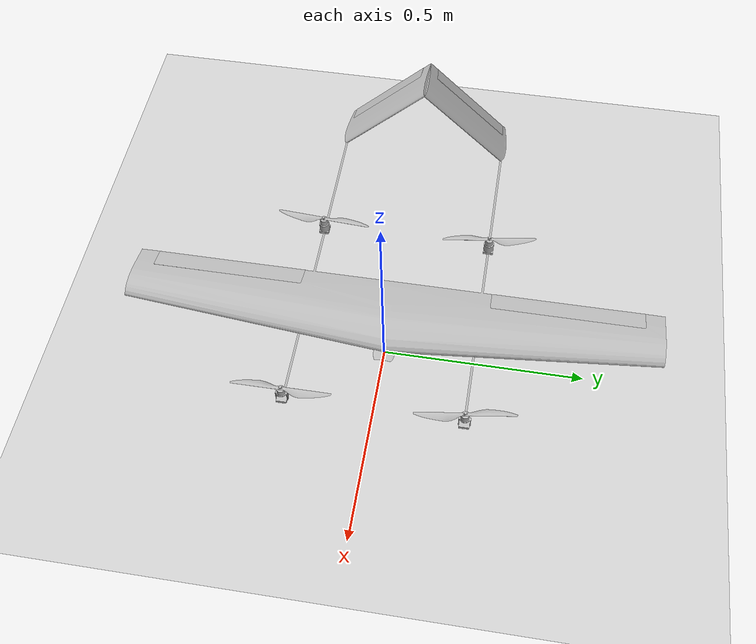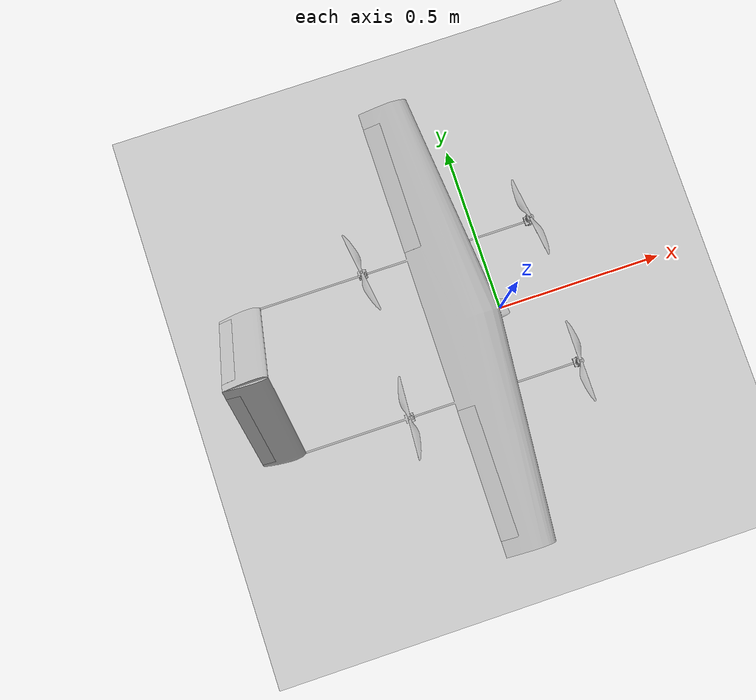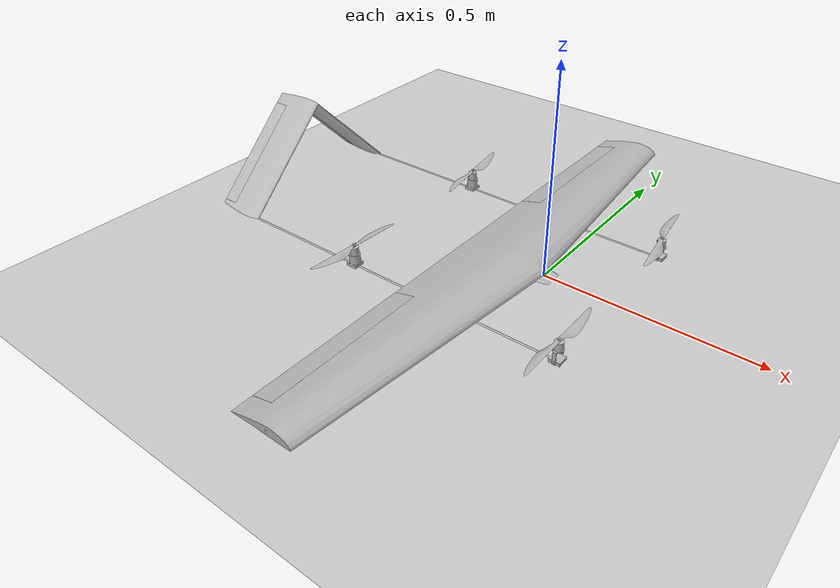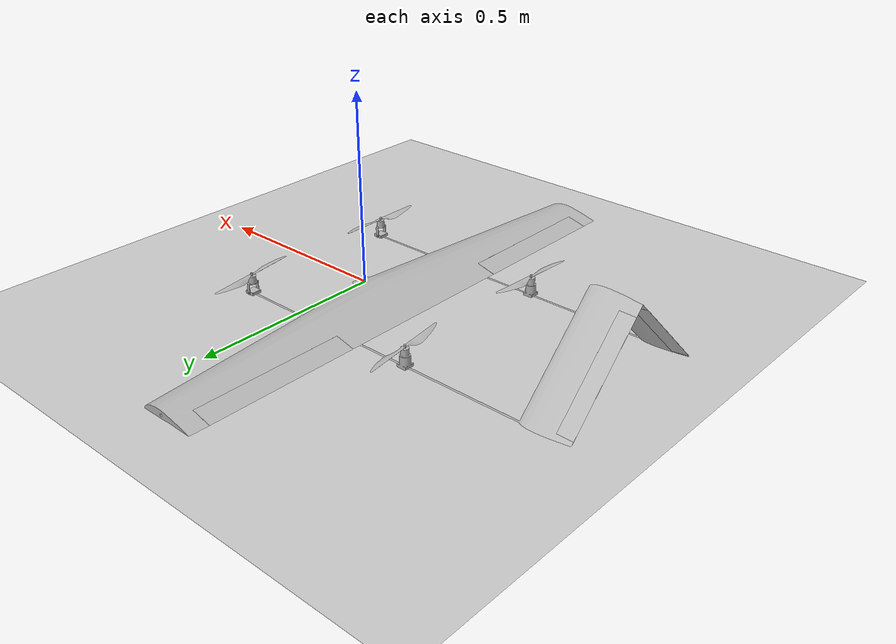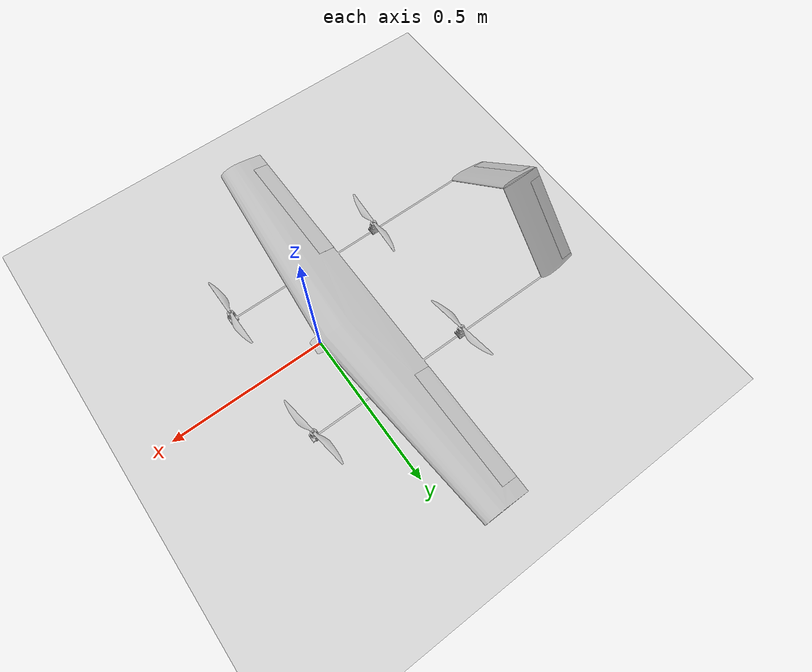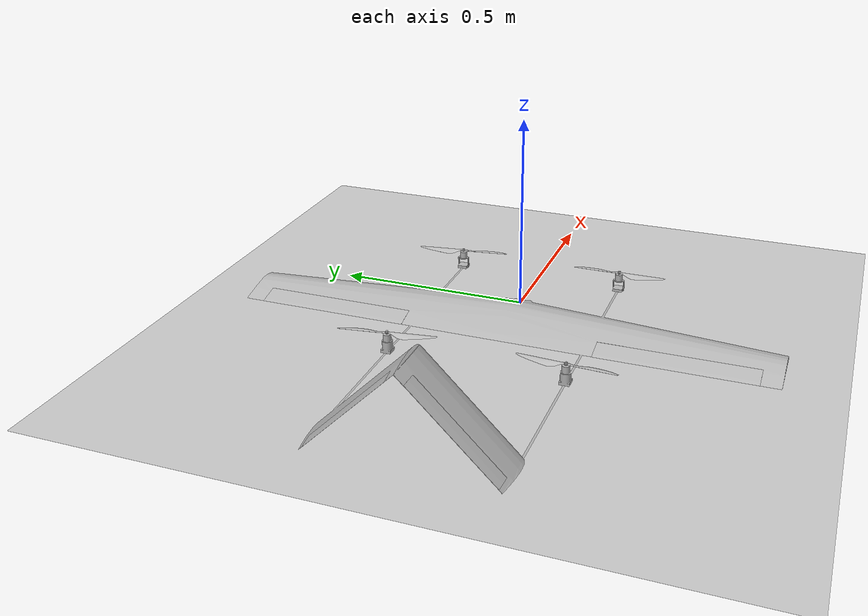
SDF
<?xml version="1.0" ?>
<sdf version="1.6">
  <world name="default">
    <gui>
      <camera name="user_camera">
        <pose>-5 0 1 0 0.2 0</pose>
      </camera>
    </gui>
    <physics type="ode">
      <ode>
        <solver>
          <type>quick</type>
          <iters>100</iters>
          <sor>1.0</sor>
        </solver>
        <constraints>
          <cfm>0.0</cfm>
          <erp>0.2</erp>
          <contact_max_correcting_vel>0.1</contact_max_correcting_vel>
          <contact_surface_layer>0.0</contact_surface_layer>
        </constraints>
      </ode>
      <real_time_update_rate>-1</real_time_update_rate>
    </physics>
    <gravity>0 0 -9.8</gravity>
    <include>
      <uri>model://sun</uri>
    </include>

    <model name="ground_plane">
      <static>true</static>
      <link name="link">
        <collision name="collision">
          <geometry>
            <plane>
              <normal>0 0 1</normal>
              <size>5000 5000</size>
            </plane>
          </geometry>
          <surface>
            <friction>
              <ode>
                <mu>100</mu>
                <mu2>50</mu2>
              </ode>
            </friction>
          </surface>
        </collision>
        <visual name="runway">
          <pose>000 0 0.005 0 0 0</pose>
          <cast_shadows>false</cast_shadows>
          <geometry>
            <plane>
              <normal>0 0 1</normal>
              <size>1829 45</size>
            </plane>
          </geometry>
          <material>
            <script>
              <uri>file://media/materials/scripts/gazebo.material</uri>
              <name>Gazebo/Runway</name>
            </script>
          </material>
        </visual>

      </link>
    </model>

    <model name="tilt_rotor">
      <include>
        <uri>model://tilt_rotor</uri>
      </include>
    </model>
  </world>
</sdf>

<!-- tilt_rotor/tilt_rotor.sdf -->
<sdf version='1.6'>
  <model name='tilt_rotor'>
    <link name='base_link'>
      <pose frame=''>0 0 0 0 -0 0</pose>
      <inertial>
        <pose frame=''>-0.12786 -4e-06 -0.005044 0 -0 0</pose>
        <mass>0.90187</mass>
        <inertia>
          <ixx>0.030602</ixx>
          <ixy>2.8125e-07</ixy>
          <ixz>1.3683e-06</ixz>
          <iyy>0.0068225</iyy>
          <iyz>-1.3966e-07</iyz>
          <izz>0.037131</izz>
        </inertia>
      </inertial>
      <collision name='base_link_collision'>
        <pose frame=''>0 0 0 0 -0 0</pose>
        <geometry>
          <mesh>
            <scale>1 1 1</scale>
            <uri>model://tilt_rotor/meshes/base_link.STL</uri>
          </mesh>
        </geometry>
      </collision>
      <visual name='base_link_visual'>
        <pose frame=''>0 0 0 0 -0 0</pose>
        <geometry>
          <mesh>
            <scale>1 1 1</scale>
            <uri>model://tilt_rotor/meshes/base_link.STL</uri>
          </mesh>
        </geometry>
      </visual>
    </link>
    <link name='aileron_left'>
      <pose frame=''>-0.16997 0.2 0.005812 0 -0 0</pose>
      <inertial>
        <pose frame=''>-0.016756 0.24939 -0.003295 0 -0 0</pose>
        <mass>0.0038016</mass>
        <inertia>
          <ixx>5.068e-05</ixx>
          <ixy>-1.013e-08</ixy>
          <ixz>-1.2413e-07</ixz>
          <iyy>8.3318e-07</iyy>
          <iyz>3.2875e-09</iyz>
          <izz>5.1422e-05</izz>
        </inertia>
      </inertial>
      <collision name='aileron_left_collision'>
        <pose frame=''>0 0 0 0 -0 0</pose>
        <geometry>
          <mesh>
            <scale>1 1 1</scale>
            <uri>model://tilt_rotor/meshes/aileron_left.STL</uri>
          </mesh>
        </geometry>
      </collision>
      <visual name='aileron_left_visual'>
        <pose frame=''>0 0 0 0 -0 0</pose>
        <geometry>
          <mesh>
            <scale>1 1 1</scale>
            <uri>model://tilt_rotor/meshes/aileron_left.STL</uri>
          </mesh>
        </geometry>
      </visual>
    </link>
    <joint name='aileron_left_joint' type='revolute'>
      <child>aileron_left</child>
      <parent>base_link</parent>
      <axis>
        <xyz>0 1 0</xyz>
        <limit>
          <lower>-0.5236</lower>
          <upper>0.5236</upper>

        </limit>
        <dynamics>
          <spring_reference>0</spring_reference>
          <spring_stiffness>0</spring_stiffness>
        </dynamics>
        <use_parent_model_frame>1</use_parent_model_frame>
      </axis>
      <physics>
        <ode>
          <implicit_spring_damper>1</implicit_spring_damper>
        </ode>
      </physics>
    </joint>
    <link name='aileron_right'>
      <pose frame=''>-0.16997 -0.2 0.005812 0 -0 0</pose>
      <inertial>
        <pose frame=''>-0.016759 -0.25061 -0.003282 0 -0 0</pose>
        <mass>0.0038016</mass>
        <inertia>
          <ixx>5.068e-05</ixx>
          <ixy>-1.0128e-08</ixy>
          <ixz>-1.2356e-07</ixz>
          <iyy>8.3318e-07</iyy>
          <iyz>3.2951e-09</iyz>
          <izz>5.1423e-05</izz>
        </inertia>
      </inertial>
      <collision name='aileron_right_collision'>
        <pose frame=''>0 0 0 0 -0 0</pose>
        <geometry>
          <mesh>
            <scale>1 1 1</scale>
            <uri>model://tilt_rotor/meshes/aileron_right.STL</uri>
          </mesh>
        </geometry>
      </collision>
      <visual name='aileron_right_visual'>
        <pose frame=''>0 0 0 0 -0 0</pose>
        <geometry>
          <mesh>
            <scale>1 1 1</scale>
            <uri>model://tilt_rotor/meshes/aileron_right.STL</uri>
          </mesh>
        </geometry>
      </visual>
    </link>
    <joint name='aileron_right_joint' type='revolute'>
      <child>aileron_right</child>
      <parent>base_link</parent>
      <axis>
        <xyz>0 1 0</xyz>
        <limit>
          <lower>-0.5236</lower>
          <upper>0.5236</upper>

        </limit>
        <dynamics>
          <spring_reference>0</spring_reference>
          <spring_stiffness>0</spring_stiffness>
        </dynamics>
        <use_parent_model_frame>1</use_parent_model_frame>
      </axis>
      <physics>
        <ode>
          <implicit_spring_damper>1</implicit_spring_damper>
        </ode>
      </physics>
    </joint>
    <link name='propeller_rear_left'>
      <pose frame=''>-0.358 0.22486 0.041843 0 -0 0</pose>
      <inertial>
        <pose frame=''>-0 0 0.006535 0 -0 0</pose>
        <mass>0.0054051</mass>
        <inertia>
          <ixx>2.1407e-05</ixx>
          <ixy>2.0834e-06</ixy>
          <ixz>1.0335e-14</ixz>
          <iyy>3.3266e-07</iyy>
          <iyz>1.1359e-14</iyz>
          <izz>2.1719e-05</izz>
        </inertia>
      </inertial>
      <collision name='propeller_rear_left_collision'>
        <pose frame=''>0 0 0 0 -0 0</pose>
        <geometry>
          <mesh>
            <scale>1 1 1</scale>
            <uri>model://tilt_rotor/meshes/propeller_rear_left.STL</uri>
          </mesh>
        </geometry>
      </collision>
      <visual name='propeller_rear_left_visual'>
        <pose frame=''>0 0 0 0 -0 0</pose>
        <geometry>
          <mesh>
            <scale>1 1 1</scale>
            <uri>model://tilt_rotor/meshes/propeller_rear_left.STL</uri>
          </mesh>
        </geometry>
      </visual>
    </link>
    <joint name='propeller_rear_left_joint' type='revolute'>
      <child>propeller_rear_left</child>
      <parent>base_link</parent>
      <axis>
        <xyz>0 0 1</xyz>
        <limit>
          <lower>-1e+16</lower>
          <upper>1e+16</upper>
        </limit>
        <dynamics>
          <damping>0.04</damping>
          <friction>0</friction>
          <spring_reference>0</spring_reference>
          <spring_stiffness>0</spring_stiffness>
        </dynamics>
        <use_parent_model_frame>1</use_parent_model_frame>
      </axis>
    </joint>
    <link name='propeller_rear_right'>
      <pose frame=''>-0.358 -0.22486 0.041843 0 -0 0</pose>
      <inertial>
        <pose frame=''>-0 0 0.006535 0 -0 0</pose>
        <mass>0.0054054</mass>
        <inertia>
          <ixx>2.1608e-05</ixx>
          <ixy>-3.447e-07</ixy>
          <ixz>1.1686e-14</ixz>
          <iyy>1.3421e-07</iyy>
          <iyz>-9.8143e-15</iyz>
          <izz>2.1721e-05</izz>
        </inertia>
      </inertial>
      <collision name='propeller_rear_right_collision'>
        <pose frame=''>0 0 0 0 -0 0</pose>
        <geometry>
          <mesh>
            <scale>1 1 1</scale>
            <uri>model://tilt_rotor/meshes/propeller_rear_right.STL</uri>
          </mesh>
        </geometry>
      </collision>
      <visual name='propeller_rear_right_visual'>
        <pose frame=''>0 0 0 0 -0 0</pose>
        <geometry>
          <mesh>
            <scale>1 1 1</scale>
            <uri>model://tilt_rotor/meshes/propeller_rear_right.STL</uri>
          </mesh>
        </geometry>
      </visual>
    </link>
    <joint name='propeller_rear_right_joint' type='revolute'>
      <child>propeller_rear_right</child>
      <parent>base_link</parent>
      <axis>
        <xyz>0 0 1</xyz>
        <limit>
          <lower>-1e+16</lower>
          <upper>1e+16</upper>
        </limit>
        <dynamics>
          <damping>0.04</damping>
          <friction>0</friction>
          <spring_reference>0</spring_reference>
          <spring_stiffness>0</spring_stiffness>
        </dynamics>
        <use_parent_model_frame>1</use_parent_model_frame>
      </axis>
    </joint>
    <link name='ruddervator_left'>
      <pose frame=''>-0.775 0.11193 0.11193 -0.79348 0.12648 -0.1275</pose>
      <inertial>
        <pose frame=''>-0.009877 0.010141 -0.001818 0 -0 0</pose>
        <mass>0.0013457</mass>
        <inertia>
          <ixx>8.7475e-06</ixx>
          <ixy>8.2912e-15</ixy>
          <ixz>-2.1964e-08</ixz>
          <iyy>1.3526e-07</iyy>
          <iyz>-3.8536e-14</iyz>
          <izz>8.8628e-06</izz>
        </inertia>
      </inertial>
      <collision name='ruddervator_left_collision'>
        <pose frame=''>0 0 0 0 -0 0</pose>
        <geometry>
          <mesh>
            <scale>1 1 1</scale>
            <uri>model://tilt_rotor/meshes/ruddervator_left.STL</uri>
          </mesh>
        </geometry>
      </collision>
      <visual name='ruddervator_left_visual'>
        <pose frame=''>0 0 0 0 -0 0</pose>
        <geometry>
          <mesh>
            <scale>1 1 1</scale>
            <uri>model://tilt_rotor/meshes/ruddervator_left.STL</uri>
          </mesh>
        </geometry>
      </visual>
    </link>
    <joint name='ruddervator_left_joint' type='revolute'>
      <child>ruddervator_left</child>
      <parent>base_link</parent>
      <axis>
        <xyz>-2e-06 0.707109 -0.707105</xyz>
        <limit>
          <lower>-0.5236</lower>
          <upper>0.5236</upper>

        </limit>
        <dynamics>
          <spring_reference>0</spring_reference>
          <spring_stiffness>0</spring_stiffness>
        </dynamics>
        <use_parent_model_frame>1</use_parent_model_frame>
      </axis>
    </joint>
    <link name='ruddervator_right'>
      <pose frame=''>-0.775 -0.11193 0.11193 0.7854 0.003309 0.003309</pose>
      <inertial>
        <pose frame=''>-0.010043 -0.010141 9.2e-05 0 -0 0</pose>
        <mass>0.0013457</mass>
        <inertia>
          <ixx>8.74347e-06</ixx>
          <ixy>-1.54079e-15</ixy>
          <ixz>1.13388e-09</ixz>
          <iyy>1.35259e-07</iyy>
          <iyz>-3.93914e-14</iyz>
          <izz>8.86684e-06</izz>
        </inertia>
      </inertial>
      <collision name='ruddervator_right_collision'>
        <pose frame=''>0 0 0 0 -0 0</pose>
        <geometry>
          <mesh>
            <scale>1 1 1</scale>
            <uri>model://tilt_rotor/meshes/ruddervator_right.STL</uri>
          </mesh>
        </geometry>
      </collision>
      <visual name='ruddervator_right_visual'>
        <pose frame=''>0 0 0 0 -0 0</pose>
        <geometry>
          <mesh>
            <scale>1 1 1</scale>
            <uri>model://tilt_rotor/meshes/ruddervator_right.STL</uri>
          </mesh>
        </geometry>
      </visual>
    </link>
    <joint name='ruddervator_right_joint' type='revolute'>
      <child>ruddervator_right</child>
      <parent>base_link</parent>
      <axis>
        <xyz>-0 0.707109 0.707104</xyz>
        <limit>
          <lower>-0.523599</lower>
          <upper>0.523599</upper>

        </limit>
        <dynamics>
          <spring_reference>0</spring_reference>
          <spring_stiffness>0</spring_stiffness>
        </dynamics>
        <use_parent_model_frame>1</use_parent_model_frame>
      </axis>
    </joint>
    <link name='motor_front_left'>
      <pose frame=''>0.168 0.20986 0.003 0 -0 0</pose>
      <inertial>
        <pose frame=''>0 0.015 0.030513 0 -0 0</pose>
        <mass>0.061036</mass>
        <inertia>
          <ixx>8.5593e-06</ixx>
          <ixy>-3.4497e-22</ixy>
          <ixz>-9.3615e-23</ixz>
          <iyy>7.1825e-06</iyy>
          <iyz>9.892e-21</iyz>
          <izz>4.223e-06</izz>
        </inertia>
      </inertial>
      <collision name='motor_front_left_collision'>
        <pose frame=''>0 0 0 0 -0 0</pose>
        <geometry>
          <mesh>
            <scale>1 1 1</scale>
            <uri>model://tilt_rotor/meshes/motor_front_left.STL</uri>
          </mesh>
        </geometry>
      </collision>
      <visual name='motor_front_left_visual'>
        <pose frame=''>0 0 0 0 -0 0</pose>
        <geometry>
          <mesh>
            <scale>1 1 1</scale>
            <uri>model://tilt_rotor/meshes/motor_front_left.STL</uri>
          </mesh>
        </geometry>
      </visual>
    </link>
    <joint name='servo_front_left_joint' type='revolute'>
      <child>motor_front_left</child>
      <parent>base_link</parent>
      <axis>
        <xyz>0 1 0</xyz>
        <limit>
          <lower>-0.017453</lower>
          <upper>1.5708</upper>
        </limit>
        <dynamics>
          <damping>0.04</damping>
          <friction>0</friction>
          <spring_reference>0</spring_reference>
          <spring_stiffness>0</spring_stiffness>
        </dynamics>
        <use_parent_model_frame>1</use_parent_model_frame>
      </axis>
    </joint>
    <link name='propeller_front_left'>
      <pose frame=''>0.168 0.22486 0.041843 0 -0 0</pose>
      <inertial>
        <pose frame=''>0 0 0.006535 0 -0 0</pose>
        <mass>0.0054054</mass>
        <inertia>
          <ixx>2.0881e-05</ixx>
          <ixy>3.8994e-06</ixy>
          <ixz>-1.3473e-14</ixz>
          <iyy>8.614e-07</iyy>
          <iyz>7.6605e-15</iyz>
          <izz>2.1721e-05</izz>
        </inertia>
      </inertial>
      <collision name='propeller_front_left_collision'>
        <pose frame=''>0 0 0 0 -0 0</pose>
        <geometry>
          <mesh>
            <scale>1 1 1</scale>
            <uri>model://tilt_rotor/meshes/propeller_front_left.STL</uri>
          </mesh>
        </geometry>
      </collision>
      <visual name='propeller_front_left_visual'>
        <pose frame=''>0 0 0 0 -0 0</pose>
        <geometry>
          <mesh>
            <scale>1 1 1</scale>
            <uri>model://tilt_rotor/meshes/propeller_front_left.STL</uri>
          </mesh>
        </geometry>
      </visual>
    </link>
    <joint name='propeller_front_left_joint' type='revolute'>
      <child>propeller_front_left</child>
      <parent>motor_front_left</parent>
      <axis>
        <xyz>0 0 1</xyz>
        <limit>
          <lower>-1e+16</lower>
          <upper>1e+16</upper>
        </limit>
        <dynamics>
          <damping>0.04</damping>
          <friction>0</friction>
          <spring_reference>0</spring_reference>
          <spring_stiffness>0</spring_stiffness>
        </dynamics>
        <use_parent_model_frame>1</use_parent_model_frame>
      </axis>
    </joint>
    <link name='motor_front_right'>
      <pose frame=''>0.168 -0.20986 0.003 0 -0 0</pose>
      <inertial>
        <pose frame=''>-0 -0.015 0.030513 0 -0 0</pose>
        <mass>0.061036</mass>
        <inertia>
          <ixx>8.5593e-06</ixx>
          <ixy>3.1994e-23</ixy>
          <ixz>3.4129e-22</ixz>
          <iyy>7.1825e-06</iyy>
          <iyz>3.6464e-21</iyz>
          <izz>4.223e-06</izz>
        </inertia>
      </inertial>
      <collision name='motor_front_right_collision'>
        <pose frame=''>0 0 0 0 -0 0</pose>
        <geometry>
          <mesh>
            <scale>1 1 1</scale>
            <uri>model://tilt_rotor/meshes/motor_front_right.STL</uri>
          </mesh>
        </geometry>
      </collision>
      <visual name='motor_front_right_visual'>
        <pose frame=''>0 0 0 0 -0 0</pose>
        <geometry>
          <mesh>
            <scale>1 1 1</scale>
            <uri>model://tilt_rotor/meshes/motor_front_right.STL</uri>
          </mesh>
        </geometry>
      </visual>
    </link>
    <joint name='servo_front_right_joint' type='revolute'>
      <child>motor_front_right</child>
      <parent>base_link</parent>
      <axis>
        <xyz>0 1 0</xyz>
        <limit>
          <lower>-0.017453</lower>
          <upper>1.5708</upper>
        </limit>
        <dynamics>
          <damping>0.04</damping>
          <friction>0</friction>
          <spring_reference>0</spring_reference>
          <spring_stiffness>0</spring_stiffness>
        </dynamics>
        <use_parent_model_frame>1</use_parent_model_frame>
      </axis>
    </joint>
    <link name='propeller_front_right'>
      <pose frame=''>0.168 -0.22486 0.041843 0 -0 0</pose>
      <inertial>
        <pose frame=''>0 0 0.006535 0 -0 0</pose>
        <mass>0.0054051</mass>
        <inertia>
          <ixx>2.1576e-05</ixx>
          <ixy>-8.7148e-07</ixy>
          <ixz>-1.1802e-14</ixz>
          <iyy>1.6408e-07</iyy>
          <iyz>-9.8278e-15</iyz>
          <izz>2.1719e-05</izz>
        </inertia>
      </inertial>
      <collision name='propeller_front_right_collision'>
        <pose frame=''>0 0 0 0 -0 0</pose>
        <geometry>
          <mesh>
            <scale>1 1 1</scale>
            <uri>model://tilt_rotor/meshes/propeller_front_right.STL</uri>
          </mesh>
        </geometry>
      </collision>
      <visual name='propeller_front_right_visual'>
        <pose frame=''>0 0 0 0 -0 0</pose>
        <geometry>
          <mesh>
            <scale>1 1 1</scale>
            <uri>model://tilt_rotor/meshes/propeller_front_right.STL</uri>
          </mesh>
        </geometry>
      </visual>
    </link>
    <joint name='propeller_front_right_joint' type='revolute'>
      <child>propeller_front_right</child>
      <parent>motor_front_right</parent>
      <axis>
        <xyz>0 0 1</xyz>
        <limit>
          <lower>-1e+16</lower>
          <upper>1e+16</upper>
        </limit>
        <dynamics>
          <damping>0.04</damping>
          <friction>0</friction>
          <spring_reference>0</spring_reference>
          <spring_stiffness>0</spring_stiffness>
        </dynamics>
        <use_parent_model_frame>1</use_parent_model_frame>
      </axis>
    </joint>
      <link name='tilt_rotor/imu_link'>
      <inertial>
        <pose>0 0 0 0 0 0</pose>
        <mass>0.15</mass>
        <inertia>
          <ixx>0.00001</ixx>
          <ixy>0</ixy>
          <ixz>0</ixz>
          <iyy>0.00002</iyy>
          <iyz>0</iyz>
          <izz>0.00002</izz>
        </inertia>
      </inertial>
      <sensor name="imu_sensor" type="imu">
        <pose>0 0 0 3.141593 0 0</pose>
        <always_on>1</always_on>
        <update_rate>1000.0</update_rate>
      </sensor>
    </link>
    <joint name='tilt_rotor/imu_joint' type='revolute'>
      <child>tilt_rotor/imu_link</child>
      <parent>base_link</parent>
      <axis>
        <xyz>0 0 1</xyz>
        <limit>
          <lower>0</lower>
          <upper>0</upper>
          <effort>0</effort>
          <velocity>0</velocity>
        </limit>
        <dynamics>
          <damping>1.0</damping>
        </dynamics>
        <use_parent_model_frame>1</use_parent_model_frame>
      </axis>
      <physics>
        <ode>
          <implicit_spring_damper>1</implicit_spring_damper>
        </ode>
      </physics>
    </joint>
     <plugin name="left_wing" filename="libLiftDragPlugin.so">
      <a0>0.156575426451136</a0>
      <cla>5.15662015617741</cla>
      <cda>0.401070456591576</cda>
      <cma>-1.2</cma>
      <alpha_stall>0.357288290430484</alpha_stall>
      <cla_stall>-3.85</cla_stall>
      <cda_stall>-0.9233984055</cda_stall>
      <cma_stall>0</cma_stall>
      <cp>-0.095 0.35 0</cp>
      <area>0.13</area>
      <air_density>1.2041</air_density>
      <forward>1 0 0</forward>
      <upward>0 0 1</upward>
      <link_name>base_link</link_name>
      <control_joint_name>
        aileron_left_joint
      </control_joint_name>
      <control_joint_rad_to_cl>-0.3</control_joint_rad_to_cl>
    </plugin>
    <plugin name="right_wing" filename="libLiftDragPlugin.so">
      <a0>0.156575426451136</a0>
      <cla>5.15662015617741</cla>
      <cda>0.401070456591576</cda>
      <cma>-1.2</cma>
      <alpha_stall>0.357288290430484</alpha_stall>
      <cla_stall>-3.85</cla_stall>
      <cda_stall>-0.9233984055</cda_stall>
      <cma_stall>0</cma_stall>
      <cp>-0.095 -0.35 0</cp>
      <area>0.13</area>
      <air_density>1.2041</air_density>
      <forward>1 0 0</forward>
      <upward>0 0 1</upward>
      <link_name>base_link</link_name>
      <control_joint_name>
        aileron_right_joint
      </control_joint_name>
      <control_joint_rad_to_cl>-0.3</control_joint_rad_to_cl>
    </plugin>
      <plugin name="left_tail" filename="libLiftDragPlugin.so">
      <a0>0</a0>
      <cla>3.10543124960906</cla>
      <cda>0.269290163711487</cda>
      <cma>-1.2</cma>
      <alpha_stall>0.349065850398866</alpha_stall>
      <cla_stall>-3.85</cla_stall>
      <cda_stall>-0.9233984055</cda_stall>
      <cma_stall>0</cma_stall>
      <cp>-0.68 0.07 0.10</cp>
      <area>0.035</area>
      <air_density>1.2041</air_density>
      <forward>1 0 0</forward>
      <upward>0 0.707 0.707</upward>
      <link_name>base_link</link_name>
      <control_joint_name>
        ruddervator_left_joint
      </control_joint_name>
      <control_joint_rad_to_cl>-4.0</control_joint_rad_to_cl>
    </plugin>
    <plugin name="right_tail" filename="libLiftDragPlugin.so">
      <a0>0</a0>
      <cla>3.10543124960906</cla>
      <cda>0.269290163711487</cda>
      <cma>-1.2</cma>
      <alpha_stall>0.349065850398866</alpha_stall>
      <cla_stall>-3.85</cla_stall>
      <cda_stall>-0.9233984055</cda_stall>
      <cma_stall>0</cma_stall>
      <cp>-0.68 -0.07 0.10</cp>
      <area>0.035</area>
      <air_density>1.2041</air_density>
      <forward>1 0 0</forward>
      <upward>0 -0.707 0.707</upward>
      <link_name>base_link</link_name>
      <control_joint_name>
        ruddervator_right_joint
      </control_joint_name>
      <control_joint_rad_to_cl>-4.0</control_joint_rad_to_cl>
    </plugin>
     <plugin name="propeller_front_right_blade_1" filename="libLiftDragPlugin.so">
      <a0>0.3</a0>
      <alpha_stall>1.4</alpha_stall>
      <cla>4.2500</cla>
      <cda>0.10</cda>
      <cma>0.00</cma>
      <cla_stall>-0.025</cla_stall>
      <cda_stall>0.0</cda_stall>
      <cma_stall>0.0</cma_stall>
      <area>0.005</area>
      <air_density>1.2041</air_density>
       <cp>0 0.063 0</cp>
      <forward>-1 0 0</forward>
      <upward>0 0 1</upward>
      <link_name>propeller_front_right</link_name>
    </plugin>
    <plugin name="propeller_front_right_blade_2" filename="libLiftDragPlugin.so">
      <a0>0.3</a0>
      <alpha_stall>1.4</alpha_stall>
      <cla>4.2500</cla>
      <cda>0.10</cda>
      <cma>0.00</cma>
      <cda_stall>0.0</cda_stall>
      <cla_stall>-0.025</cla_stall>
      <cma_stall>0.0</cma_stall>
      <area>0.005</area>
      <air_density>1.2041</air_density>
      <cp>0  -0.063 0</cp>
      <forward>1 0 0</forward>
      <upward>0 0 1</upward>
      <link_name>propeller_front_right</link_name>
   </plugin>
    <plugin name="propeller_rear_left_blade_1" filename="libLiftDragPlugin.so">
      <a0>0.3</a0>
      <alpha_stall>1.4</alpha_stall>
      <cla>4.2500</cla>
      <cda>0.10</cda>
      <cma>0.00</cma>
      <cla_stall>-0.025</cla_stall>
      <cda_stall>0.0</cda_stall>
      <cma_stall>0.0</cma_stall>
      <area>0.005</area>
      <air_density>1.2041</air_density>
       <cp>0 0.063 0</cp>
      <forward>-1 0 0</forward>
      <upward>0 0 1</upward>
      <link_name>propeller_rear_left</link_name>
    </plugin>
    <plugin name="propeller_rear_left_blade_2" filename="libLiftDragPlugin.so">
      <a0>0.3</a0>
      <alpha_stall>1.4</alpha_stall>
      <cla>4.2500</cla>
      <cda>0.10</cda>
      <cma>0.00</cma>
      <cda_stall>0.0</cda_stall>
      <cla_stall>-0.025</cla_stall>
      <cma_stall>0.0</cma_stall>
      <area>0.005</area>
      <air_density>1.2041</air_density>
      <cp>0  -0.063 0</cp>
      <forward>1 0 0</forward>
      <upward>0 0 1</upward>
      <link_name>propeller_rear_left</link_name>
   </plugin>
  <plugin name="propeller_front_left_blade_1" filename="libLiftDragPlugin.so">
      <a0>0.3</a0>
      <alpha_stall>1.4</alpha_stall>
      <cla>4.2500</cla>
      <cda>0.10</cda>
      <cma>0.00</cma>
      <cla_stall>-0.025</cla_stall>
      <cda_stall>0.0</cda_stall>
      <cma_stall>0.0</cma_stall>
      <area>0.005</area>
      <air_density>1.2041</air_density>
       <cp>0 0.063 0</cp>
      <forward>1 0 0</forward>
      <upward>0 0 1</upward>
      <link_name>propeller_front_left</link_name>
    </plugin>
  <plugin name="propeller_front_left_blade_2" filename="libLiftDragPlugin.so">
      <a0>0.3</a0>
      <alpha_stall>1.4</alpha_stall>
      <cla>4.2500</cla>
      <cda>0.10</cda>
      <cma>0.00</cma>
      <cda_stall>0.0</cda_stall>
      <cla_stall>-0.025</cla_stall>
      <cma_stall>0.0</cma_stall>
      <area>0.005</area>
      <air_density>1.2041</air_density>
      <cp>0  -0.063 0</cp>
      <forward>-1 0 0</forward>
      <upward>0 0 1</upward>
      <link_name>propeller_front_left</link_name>
   </plugin>
    <plugin name="propeller_rear_right_blade_1" filename="libLiftDragPlugin.so">
      <a0>0.3</a0>
      <alpha_stall>1.4</alpha_stall>
      <cla>4.2500</cla>
      <cda>0.10</cda>
      <cma>0.00</cma>
      <cla_stall>-0.025</cla_stall>
      <cda_stall>0.0</cda_stall>
      <cma_stall>0.0</cma_stall>
      <area>0.005</area>
      <air_density>1.2041</air_density>
      <cp>0 0.063 0</cp>
      <forward>1 0 0</forward>
      <upward>0 0 1</upward>
      <link_name>propeller_rear_right</link_name>
    </plugin>
    <plugin name="propeller_rear_right_blade_2" filename="libLiftDragPlugin.so">
      <a0>0.3</a0>
      <alpha_stall>1.4</alpha_stall>
      <cla>4.2500</cla>
      <cda>0.10</cda>
      <cma>0.00</cma>
      <cda_stall>0.0</cda_stall>
      <cla_stall>-0.025</cla_stall>
      <cma_stall>0.0</cma_stall>
      <area>0.005</area>
      <air_density>1.2041</air_density>
      <cp>0  -0.063 0</cp>
      <forward>-1 0 0</forward>
      <upward>0 0 1</upward>
      <link_name>propeller_rear_right</link_name>
   </plugin>
   <plugin name="arducopter_plugin" filename="libArduPilotPlugin.so">
      <fdm_addr>127.0.0.1</fdm_addr>
      <fdm_port_in>9002</fdm_port_in>
      <fdm_port_out>9003</fdm_port_out>
      <!--
          Require by APM :
          Only change model and gazebo from XYZ to XY-Z coordinates
      -->
      <modelXYZToAirplaneXForwardZDown>0 0 0 3.141593 0 0</modelXYZToAirplaneXForwardZDown>
      <gazeboXYZToNED>0 0 0 3.141593 0 0</gazeboXYZToNED>
      <imuName>tilt_rotor/imu_link::imu_sensor</imuName>
      <connectionTimeoutMaxCount>5</connectionTimeoutMaxCount>
   </plugin>
  </model>
</sdf>
